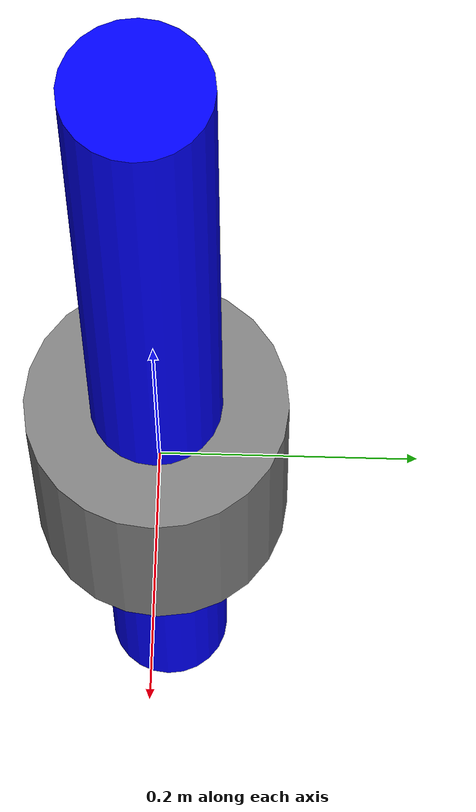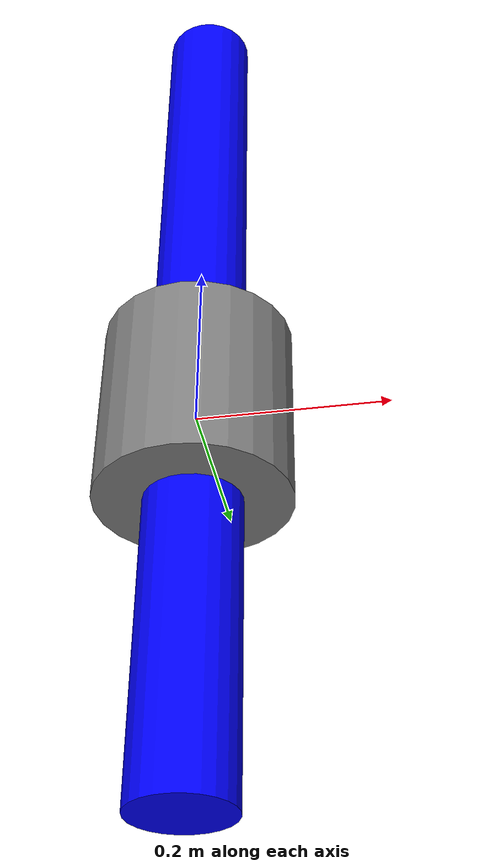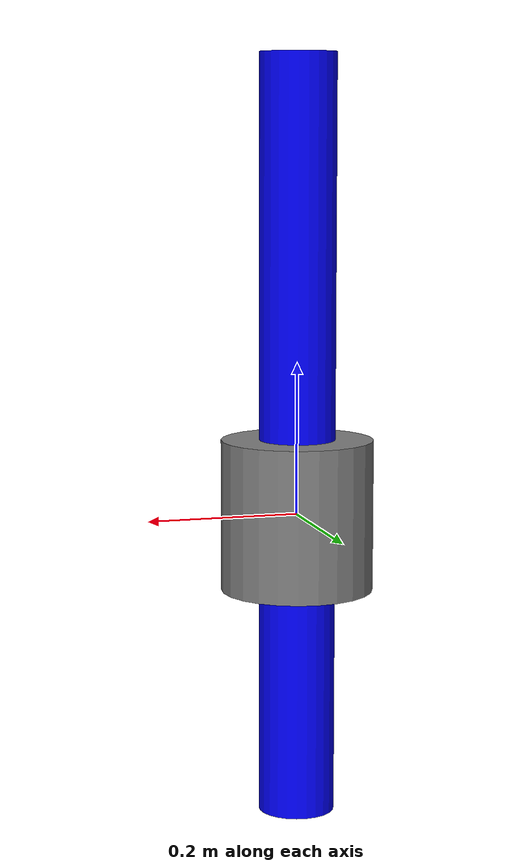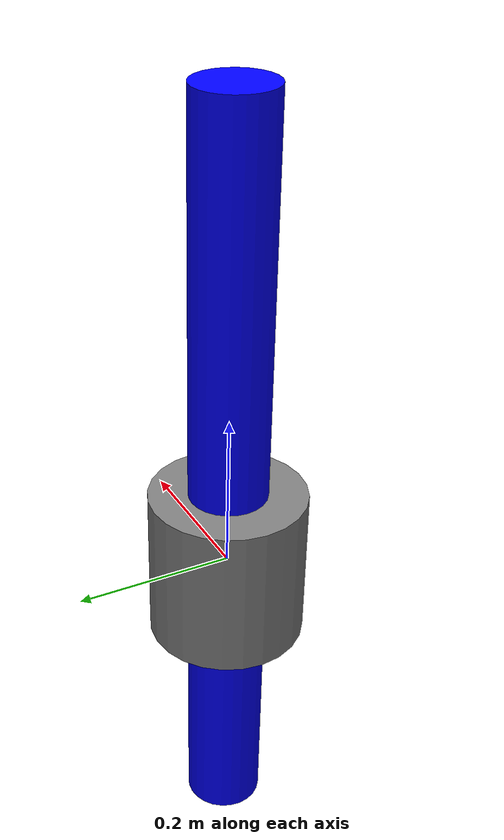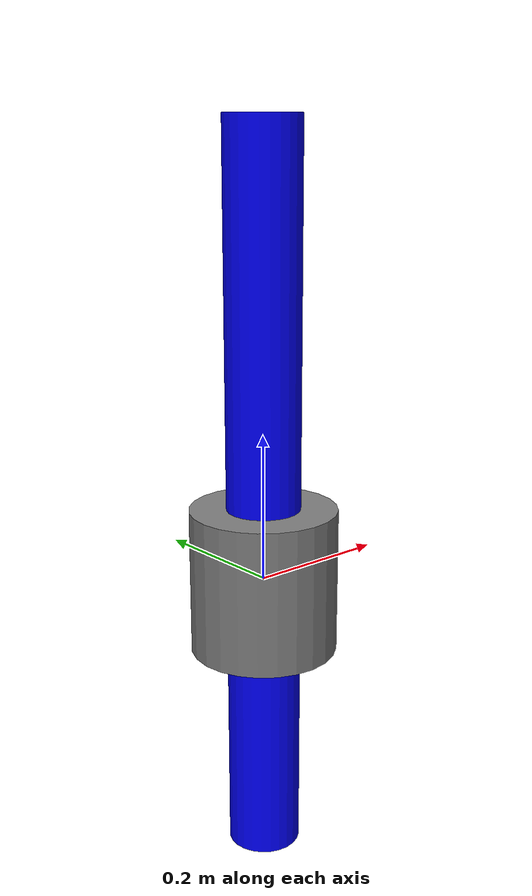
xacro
<?xml version="1.0"?>
<robot xmlns:xacro="http://www.ros.org/wiki/xacro" name="simple_arm">

  <!-- Parametri -->
  <xacro:property name="base_radius" value="0.1"/>
  <xacro:property name="base_length" value="0.2"/>
  <xacro:property name="arm_radius" value="0.05"/>
  <xacro:property name="arm_length" value="1.0"/>
  <xacro:property name="arm_mass" value="0.5"/>
  <xacro:property name="base_mass" value="1.0"/>

  <!-- Materiali -->
  <xacro:property name="base_color" value="0.5 0.5 0.5 1.0"/>
  <xacro:property name="arm_color" value="0.0 0.0 1.0 1.0"/>

  <!-- Link della base -->
  <link name="base_link">
    <visual>
      <geometry>
        <cylinder radius="${base_radius}" length="${base_length}"/>
      </geometry>
      <material>
        <color rgba="${base_color}"/>
      </material>
    </visual>
    <collision>
      <geometry>
        <cylinder radius="${base_radius}" length="${base_length}"/>
      </geometry>
    </collision>
    <inertial>
      <mass value="${base_mass}"/>
      <origin xyz="0 0 0" rpy="0 0 0"/>
      <inertia ixx="0.01" ixy="0" ixz="0" iyy="0.01" iyz="0" izz="0.01"/>
    </inertial>
  </link>

  <!-- Link del braccio -->
  <link name="arm_link">
    <visual>
      <geometry>
        <cylinder radius="${arm_radius}" length="${arm_length}"/>
      </geometry>
      <material>
        <color rgba="${arm_color}"/>
      </material>
    </visual>
    <collision>
      <geometry>
        <cylinder radius="${arm_radius}" length="${arm_length}"/>
      </geometry>
    </collision>
    <inertial>
      <mass value="${arm_mass}"/>
      <origin xyz="0 0 0.5" rpy="0 0 0"/>
      <inertia ixx="0.005" ixy="0" ixz="0" iyy="0.005" iyz="0" izz="0.005"/>
    </inertial>
  </link>

  <!-- Giunto tra base e braccio -->
  <joint name="base_to_arm_joint" type="revolute">
    <parent link="base_link"/>
    <child link="arm_link"/>
    <origin xyz="0 0 ${base_length/2}" rpy="0 0 0"/>
    <axis xyz="0 0 1"/>
    <limit lower="-1.57" upper="1.57" effort="10.0" velocity="1.0"/>
  </joint>
</robot>
